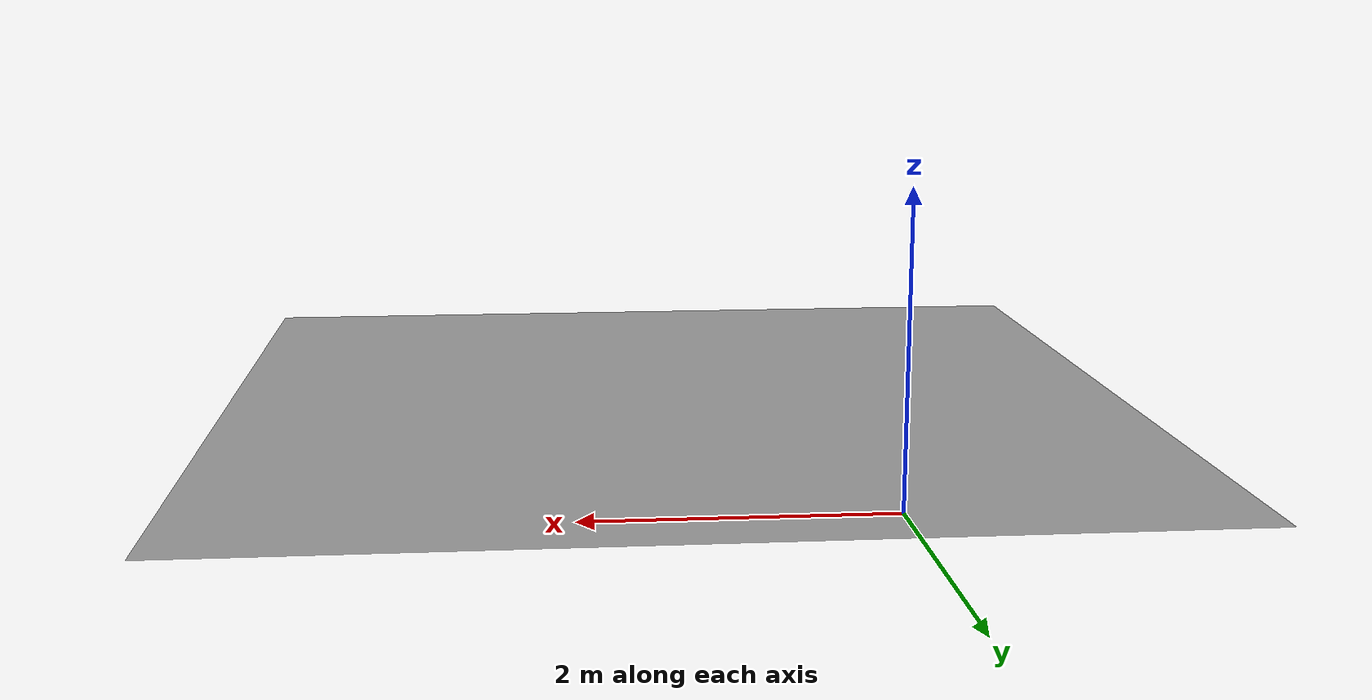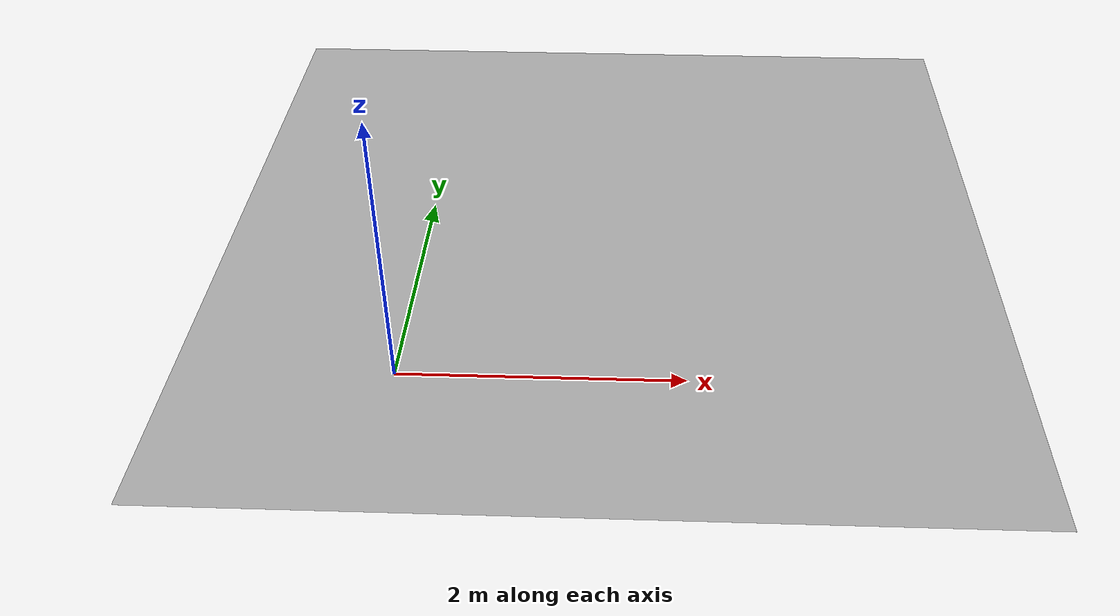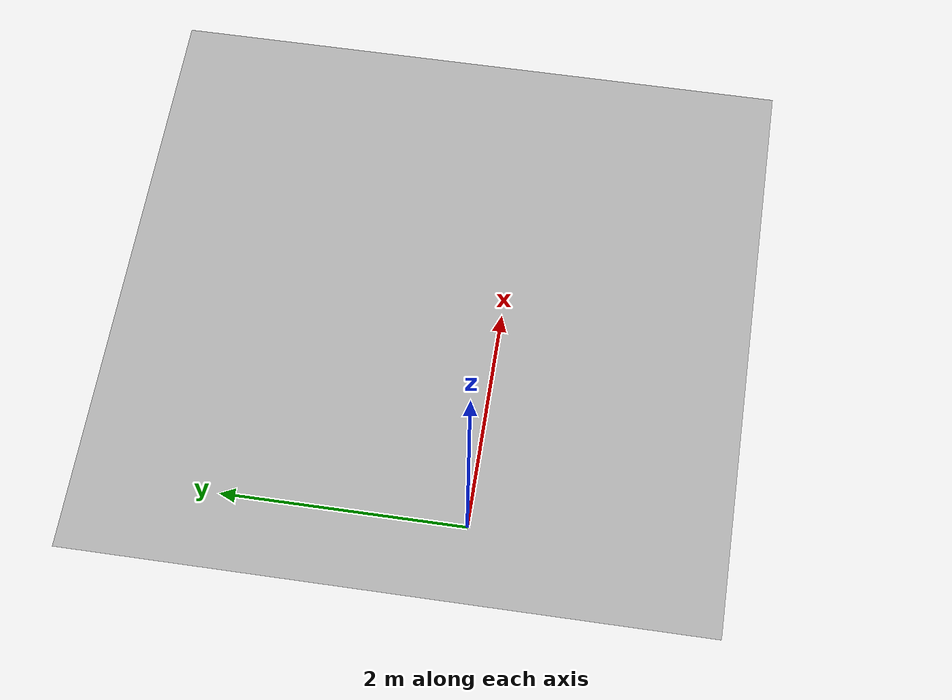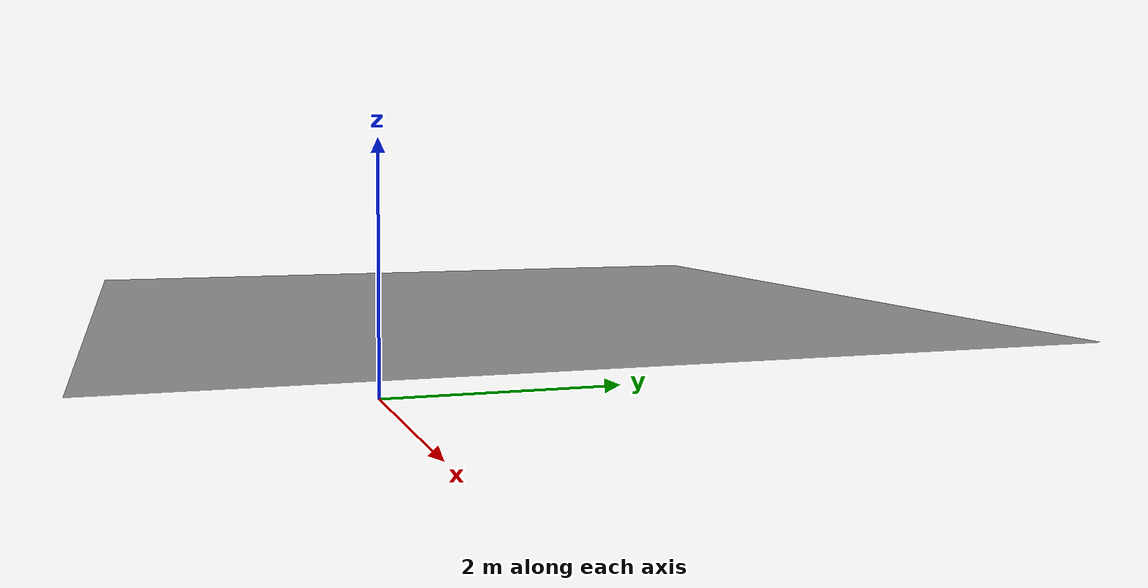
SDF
<?xml version="1.0" ?>
<sdf version="1.6">
  <model name="qr_code5">
    <static>true</static>
    <link name="link">
      <visual name="visual">
        <geometry>
          <mesh>
            <uri>model://qr_code5/meshes/qr_code.dae</uri>
            <scale>2.5 2.5 1</scale>
          </mesh>
        </geometry>
      </visual>
    </link>
  </model>
</sdf>
